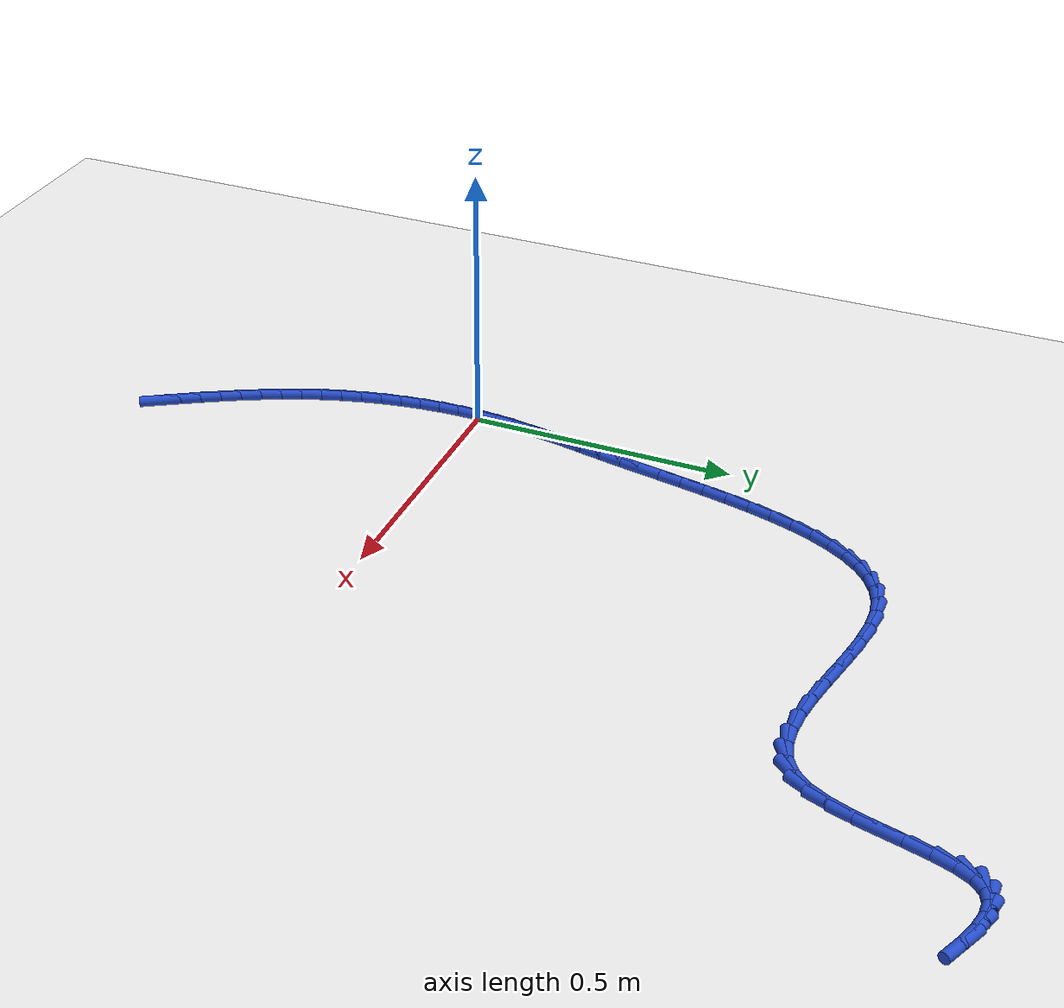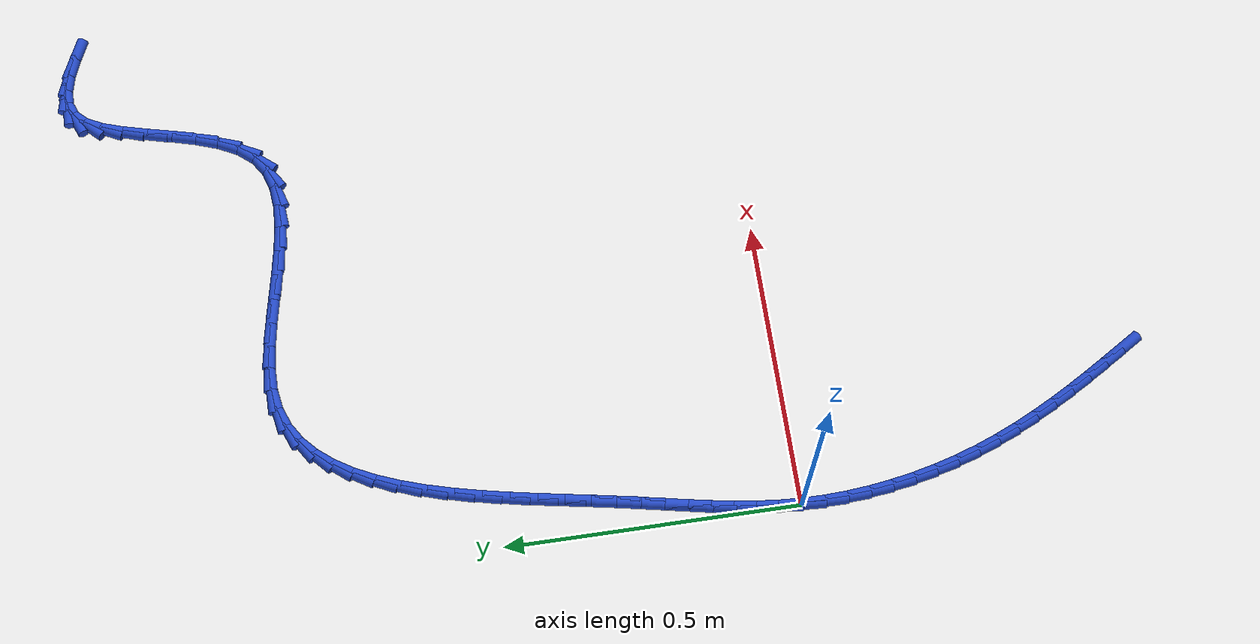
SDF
<sdf version="1.6">
 <world name="default">
  <model name="ground_plane">
   <static>1</static>
   <link name="link">
    <collision name="collision">
     <geometry><plane><normal>0 0 1</normal><size>100 100</size></plane></geometry>
     <surface><friction><ode><mu>100</mu><mu2>50</mu2></ode></friction></surface>
    </collision>
    <visual name="visual">
     <cast_shadows>0</cast_shadows>
     <geometry><plane><normal>0 0 1</normal><size>100 100</size></plane></geometry>
     <material>
      <script><uri>file://media/materials/scripts/gazebo.material</uri><name>Gazebo/WhiteGlow</name></script>
     </material>
    </visual>
   </link>
  </model>
  <model name="line">
   <link name="link_0">
    <pose>3.9898639947466563e-17 -6.938893903907228e-18 0.01 0 1.57 1.513052898574908</pose>
    <collision name="collision">
     <geometry><cylinder><radius>0.01</radius><length>0.08</length></cylinder></geometry>
    </collision>
    <visual name="visual">
     <material>
      <script><name>Gazebo/Blue</name><uri>file://media/materials/scripts/gazebo.material</uri></script>
     </material>
     <geometry><cylinder><radius>0.01</radius><length>0.08</length></cylinder></geometry>
    </visual>
   </link>
   <link name="link_1">
    <pose>0.002156272166381357 0.03730078287012222 0.01 0 1.57 1.4685234188009497</pose>
    <collision name="collision">
     <geometry><cylinder><radius>0.01</radius><length>0.08</length></cylinder></geometry>
    </collision>
    <visual name="visual">
     <material>
      <script><name>Gazebo/Blue</name><uri>file://media/materials/scripts/gazebo.material</uri></script>
     </material>
     <geometry><cylinder><radius>0.01</radius><length>0.08</length></cylinder></geometry>
    </visual>
   </link>
   <link name="link_2">
    <pose>0.0059485236757601465 0.07425113811452021 0.01 0 1.57 1.43174111248327</pose>
    <collision name="collision">
     <geometry><cylinder><radius>0.01</radius><length>0.08</length></cylinder></geometry>
    </collision>
    <visual name="visual">
     <material>
      <script><name>Gazebo/Blue</name><uri>file://media/materials/scripts/gazebo.material</uri></script>
     </material>
     <geometry><cylinder><radius>0.01</radius><length>0.08</length></cylinder></geometry>
    </visual>
   </link>
   <link name="link_3">
    <pose>0.01111453466420199 0.11116216472663602 0.01 0 1.57 1.4035440751428823</pose>
    <collision name="collision">
     <geometry><cylinder><radius>0.01</radius><length>0.08</length></cylinder></geometry>
    </collision>
    <visual name="visual">
     <material>
      <script><name>Gazebo/Blue</name><uri>file://media/materials/scripts/gazebo.material</uri></script>
     </material>
     <geometry><cylinder><radius>0.01</radius><length>0.08</length></cylinder></geometry>
    </visual>
   </link>
   <link name="link_4">
    <pose>0.017392085267772462 0.14834496169991185 0.01 0 1.57 1.3842768778832308</pose>
    <collision name="collision">
     <geometry><cylinder><radius>0.01</radius><length>0.08</length></cylinder></geometry>
    </collision>
    <visual name="visual">
     <material>
      <script><name>Gazebo/Blue</name><uri>file://media/materials/scripts/gazebo.material</uri></script>
     </material>
     <geometry><cylinder><radius>0.01</radius><length>0.08</length></cylinder></geometry>
    </visual>
   </link>
   <link name="link_5">
    <pose>0.024518955622537142 0.18611062802778977 0.01 0 1.57 1.3738474238395277</pose>
    <collision name="collision">
     <geometry><cylinder><radius>0.01</radius><length>0.08</length></cylinder></geometry>
    </collision>
    <visual name="visual">
     <material>
      <script><name>Gazebo/Blue</name><uri>file://media/materials/scripts/gazebo.material</uri></script>
     </material>
     <geometry><cylinder><radius>0.01</radius><length>0.08</length></cylinder></geometry>
    </visual>
   </link>
   <link name="link_6">
    <pose>0.032232925864561605 0.22477026270371198 0.01 0 1.57 1.3718115246575833</pose>
    <collision name="collision">
     <geometry><cylinder><radius>0.01</radius><length>0.08</length></cylinder></geometry>
    </collision>
    <visual name="visual">
     <material>
      <script><name>Gazebo/Blue</name><uri>file://media/materials/scripts/gazebo.material</uri></script>
     </material>
     <geometry><cylinder><radius>0.01</radius><length>0.08</length></cylinder></geometry>
    </visual>
   </link>
   <link name="link_7">
    <pose>0.04027177612991146 0.26463496472112075 0.01 0 1.57 1.3774625699937195</pose>
    <collision name="collision">
     <geometry><cylinder><radius>0.01</radius><length>0.08</length></cylinder></geometry>
    </collision>
    <visual name="visual">
     <material>
      <script><name>Gazebo/Blue</name><uri>file://media/materials/scripts/gazebo.material</uri></script>
     </material>
     <geometry><cylinder><radius>0.01</radius><length>0.08</length></cylinder></geometry>
    </visual>
   </link>
   <link name="link_8">
    <pose>0.048373286554652235 0.3060158330734579 0.01 0 1.57 1.387882711639817</pose>
    <collision name="collision">
     <geometry><cylinder><radius>0.01</radius><length>0.08</length></cylinder></geometry>
    </collision>
    <visual name="visual">
     <material>
      <script><name>Gazebo/Blue</name><uri>file://media/materials/scripts/gazebo.material</uri></script>
     </material>
     <geometry><cylinder><radius>0.01</radius><length>0.08</length></cylinder></geometry>
    </visual>
   </link>
   <link name="link_9">
    <pose>0.05634479398032342 0.3491094351761727 0.01 0 1.57 1.3928162767115702</pose>
    <collision name="collision">
     <geometry><cylinder><radius>0.01</radius><length>0.08</length></cylinder></geometry>
    </collision>
    <visual name="visual">
     <material>
      <script><name>Gazebo/Blue</name><uri>file://media/materials/scripts/gazebo.material</uri></script>
     </material>
     <geometry><cylinder><radius>0.01</radius><length>0.08</length></cylinder></geometry>
    </visual>
   </link>
   <link name="link_10">
    <pose>0.06433805610442077 0.3935452175056501 0.01 0 1.57 1.3898911617452134</pose>
    <collision name="collision">
     <geometry><cylinder><radius>0.01</radius><length>0.08</length></cylinder></geometry>
    </collision>
    <visual name="visual">
     <material>
      <script><name>Gazebo/Blue</name><uri>file://media/materials/scripts/gazebo.material</uri></script>
     </material>
     <geometry><cylinder><radius>0.01</radius><length>0.08</length></cylinder></geometry>
    </visual>
   </link>
   <link name="link_11">
    <pose>0.07261124218220193 0.4387774100218494 0.01 0 1.57 1.3794382811619659</pose>
    <collision name="collision">
     <geometry><cylinder><radius>0.01</radius><length>0.08</length></cylinder></geometry>
    </collision>
    <visual name="visual">
     <material>
      <script><name>Gazebo/Blue</name><uri>file://media/materials/scripts/gazebo.material</uri></script>
     </material>
     <geometry><cylinder><radius>0.01</radius><length>0.08</length></cylinder></geometry>
    </visual>
   </link>
   <link name="link_12">
    <pose>0.08142255242970381 0.4842601917049304 0.01 0 1.57 1.3612991322981687</pose>
    <collision name="collision">
     <geometry><cylinder><radius>0.01</radius><length>0.08</length></cylinder></geometry>
    </collision>
    <visual name="visual">
     <material>
      <script><name>Gazebo/Blue</name><uri>file://media/materials/scripts/gazebo.material</uri></script>
     </material>
     <geometry><cylinder><radius>0.01</radius><length>0.08</length></cylinder></geometry>
    </visual>
   </link>
   <link name="link_13">
    <pose>0.09103018706296327 0.529447741535053 0.01 0 1.57 1.3348462763355675</pose>
    <collision name="collision">
     <geometry><cylinder><radius>0.01</radius><length>0.08</length></cylinder></geometry>
    </collision>
    <visual name="visual">
     <material>
      <script><name>Gazebo/Blue</name><uri>file://media/materials/scripts/gazebo.material</uri></script>
     </material>
     <geometry><cylinder><radius>0.01</radius><length>0.08</length></cylinder></geometry>
    </visual>
   </link>
   <link name="link_14">
    <pose>0.1016923462980172 0.5737942384923768 0.01 0 1.57 1.298949519000918</pose>
    <collision name="collision">
     <geometry><cylinder><radius>0.01</radius><length>0.08</length></cylinder></geometry>
    </collision>
    <visual name="visual">
     <material>
      <script><name>Gazebo/Blue</name><uri>file://media/materials/scripts/gazebo.material</uri></script>
     </material>
     <geometry><cylinder><radius>0.01</radius><length>0.08</length></cylinder></geometry>
    </visual>
   </link>
   <link name="link_15">
    <pose>0.11366723035090241 0.6167538615570614 0.01 0 1.57 1.2518966071197488</pose>
    <collision name="collision">
     <geometry><cylinder><radius>0.01</radius><length>0.08</length></cylinder></geometry>
    </collision>
    <visual name="visual">
     <material>
      <script><name>Gazebo/Blue</name><uri>file://media/materials/scripts/gazebo.material</uri></script>
     </material>
     <geometry><cylinder><radius>0.01</radius><length>0.08</length></cylinder></geometry>
    </visual>
   </link>
   <link name="link_16">
    <pose>0.12721303943765588 0.6577807897092668 0.01 0 1.57 1.1912839573119753</pose>
    <collision name="collision">
     <geometry><cylinder><radius>0.01</radius><length>0.08</length></cylinder></geometry>
    </collision>
    <visual name="visual">
     <material>
      <script><name>Gazebo/Blue</name><uri>file://media/materials/scripts/gazebo.material</uri></script>
     </material>
     <geometry><cylinder><radius>0.01</radius><length>0.08</length></cylinder></geometry>
    </visual>
   </link>
   <link name="link_17">
    <pose>0.1425879737743144 0.6963292019291527 0.01 0 1.57 1.1139224576320705</pose>
    <collision name="collision">
     <geometry><cylinder><radius>0.01</radius><length>0.08</length></cylinder></geometry>
    </collision>
    <visual name="visual">
     <material>
      <script><name>Gazebo/Blue</name><uri>file://media/materials/scripts/gazebo.material</uri></script>
     </material>
     <geometry><cylinder><radius>0.01</radius><length>0.08</length></cylinder></geometry>
    </visual>
   </link>
   <link name="link_18">
    <pose>0.16005023357691486 0.7318532771968789 0.01 0 1.57 1.01588296093077</pose>
    <collision name="collision">
     <geometry><cylinder><radius>0.01</radius><length>0.08</length></cylinder></geometry>
    </collision>
    <visual name="visual">
     <material>
      <script><name>Gazebo/Blue</name><uri>file://media/materials/scripts/gazebo.material</uri></script>
     </material>
     <geometry><cylinder><radius>0.01</radius><length>0.08</length></cylinder></geometry>
    </visual>
   </link>
   <link name="link_19">
    <pose>0.17985801906149418 0.7638071944926049 0.01 0 1.57 0.8929710697329993</pose>
    <collision name="collision">
     <geometry><cylinder><radius>0.01</radius><length>0.08</length></cylinder></geometry>
    </collision>
    <visual name="visual">
     <material>
      <script><name>Gazebo/Blue</name><uri>file://media/materials/scripts/gazebo.material</uri></script>
     </material>
     <geometry><cylinder><radius>0.01</radius><length>0.08</length></cylinder></geometry>
    </visual>
   </link>
   <link name="link_20">
    <pose>0.20226953044408924 0.7916451327964911 0.01 0 1.57 0.7421368837041712</pose>
    <collision name="collision">
     <geometry><cylinder><radius>0.01</radius><length>0.08</length></cylinder></geometry>
    </collision>
    <visual name="visual">
     <material>
      <script><name>Gazebo/Blue</name><uri>file://media/materials/scripts/gazebo.material</uri></script>
     </material>
     <geometry><cylinder><radius>0.01</radius><length>0.08</length></cylinder></geometry>
    </visual>
   </link>
   <link name="link_21">
    <pose>0.22754296794073683 0.8148212710886966 0.01 0 1.57 0.5642155621424705</pose>
    <collision name="collision">
     <geometry><cylinder><radius>0.01</radius><length>0.08</length></cylinder></geometry>
    </collision>
    <visual name="visual">
     <material>
      <script><name>Gazebo/Blue</name><uri>file://media/materials/scripts/gazebo.material</uri></script>
     </material>
     <geometry><cylinder><radius>0.01</radius><length>0.08</length></cylinder></geometry>
    </visual>
   </link>
   <link name="link_22">
    <pose>0.2559365317674739 0.8327897883493813 0.01 0 1.57 0.36703995318017646</pose>
    <collision name="collision">
     <geometry><cylinder><radius>0.01</radius><length>0.08</length></cylinder></geometry>
    </collision>
    <visual name="visual">
     <material>
      <script><name>Gazebo/Blue</name><uri>file://media/materials/scripts/gazebo.material</uri></script>
     </material>
     <geometry><cylinder><radius>0.01</radius><length>0.08</length></cylinder></geometry>
    </visual>
   </link>
   <link name="link_23">
    <pose>0.28770842214033737 0.8450048635587052 0.01 0 1.57 0.16705214579408678</pose>
    <collision name="collision">
     <geometry><cylinder><radius>0.01</radius><length>0.08</length></cylinder></geometry>
    </collision>
    <visual name="visual">
     <material>
      <script><name>Gazebo/Blue</name><uri>file://media/materials/scripts/gazebo.material</uri></script>
     </material>
     <geometry><cylinder><radius>0.01</radius><length>0.08</length></cylinder></geometry>
    </visual>
   </link>
   <link name="link_24">
    <pose>0.323089101907152 0.8509708822966459 0.01 0 1.57 0.0048951480218474295</pose>
    <collision name="collision">
     <geometry><cylinder><radius>0.01</radius><length>0.08</length></cylinder></geometry>
    </collision>
    <visual name="visual">
     <material>
      <script><name>Gazebo/Blue</name><uri>file://media/materials/scripts/gazebo.material</uri></script>
     </material>
     <geometry><cylinder><radius>0.01</radius><length>0.08</length></cylinder></geometry>
    </visual>
   </link>
   <link name="link_25">
    <pose>0.36177423542632364 0.8511602532640685 0.01 0 1.57 -0.1025571734178435</pose>
    <collision name="collision">
     <geometry><cylinder><radius>0.01</radius><length>0.08</length></cylinder></geometry>
    </collision>
    <visual name="visual">
     <material>
      <script><name>Gazebo/Blue</name><uri>file://media/materials/scripts/gazebo.material</uri></script>
     </material>
     <geometry><cylinder><radius>0.01</radius><length>0.08</length></cylinder></geometry>
    </visual>
   </link>
   <link name="link_26">
    <pose>0.40297640505811033 0.8469197977728355 0.01 0 1.57 -0.16831279573436056</pose>
    <collision name="collision">
     <geometry><cylinder><radius>0.01</radius><length>0.08</length></cylinder></geometry>
    </collision>
    <visual name="visual">
     <material>
      <script><name>Gazebo/Blue</name><uri>file://media/materials/scripts/gazebo.material</uri></script>
     </material>
     <geometry><cylinder><radius>0.01</radius><length>0.08</length></cylinder></geometry>
    </visual>
   </link>
   <link name="link_27">
    <pose>0.44589083264267937 0.839627760905016 0.01 0 1.57 -0.2018017960738071</pose>
    <collision name="collision">
     <geometry><cylinder><radius>0.01</radius><length>0.08</length></cylinder></geometry>
    </collision>
    <visual name="visual">
     <material>
      <script><name>Gazebo/Blue</name><uri>file://media/materials/scripts/gazebo.material</uri></script>
     </material>
     <geometry><cylinder><radius>0.01</radius><length>0.08</length></cylinder></geometry>
    </visual>
   </link>
   <link name="link_28">
    <pose>0.4897127400201986 0.8306623877426786 0.01 0 1.57 -0.20778349624121784</pose>
    <collision name="collision">
     <geometry><cylinder><radius>0.01</radius><length>0.08</length></cylinder></geometry>
    </collision>
    <visual name="visual">
     <material>
      <script><name>Gazebo/Blue</name><uri>file://media/materials/scripts/gazebo.material</uri></script>
     </material>
     <geometry><cylinder><radius>0.01</radius><length>0.08</length></cylinder></geometry>
    </visual>
   </link>
   <link name="link_29">
    <pose>0.5336373490308353 0.8214019233678924 0.01 0 1.57 -0.1869809368948122</pose>
    <collision name="collision">
     <geometry><cylinder><radius>0.01</radius><length>0.08</length></cylinder></geometry>
    </collision>
    <visual name="visual">
     <material>
      <script><name>Gazebo/Blue</name><uri>file://media/materials/scripts/gazebo.material</uri></script>
     </material>
     <geometry><cylinder><radius>0.01</radius><length>0.08</length></cylinder></geometry>
    </visual>
   </link>
   <link name="link_30">
    <pose>0.5768598815147576 0.8132246128627261 0.01 0 1.57 -0.13617272997016291</pose>
    <collision name="collision">
     <geometry><cylinder><radius>0.01</radius><length>0.08</length></cylinder></geometry>
    </collision>
    <visual name="visual">
     <material>
      <script><name>Gazebo/Blue</name><uri>file://media/materials/scripts/gazebo.material</uri></script>
     </material>
     <geometry><cylinder><radius>0.01</radius><length>0.08</length></cylinder></geometry>
    </visual>
   </link>
   <link name="link_31">
    <pose>0.6185755593121329 0.8075087013092489 0.01 0 1.57 -0.04758017688392564</pose>
    <collision name="collision">
     <geometry><cylinder><radius>0.01</radius><length>0.08</length></cylinder></geometry>
    </collision>
    <visual name="visual">
     <material>
      <script><name>Gazebo/Blue</name><uri>file://media/materials/scripts/gazebo.material</uri></script>
     </material>
     <geometry><cylinder><radius>0.01</radius><length>0.08</length></cylinder></geometry>
    </visual>
   </link>
   <link name="link_32">
    <pose>0.657979604263129 0.8056324337895296 0.01 0 1.57 0.09182807816345351</pose>
    <collision name="collision">
     <geometry><cylinder><radius>0.01</radius><length>0.08</length></cylinder></geometry>
    </collision>
    <visual name="visual">
     <material>
      <script><name>Gazebo/Blue</name><uri>file://media/materials/scripts/gazebo.material</uri></script>
     </material>
     <geometry><cylinder><radius>0.01</radius><length>0.08</length></cylinder></geometry>
    </visual>
   </link>
   <link name="link_33">
    <pose>0.6942672382079128 0.8089740553856369 0.01 0 1.57 0.29790187421238473</pose>
    <collision name="collision">
     <geometry><cylinder><radius>0.01</radius><length>0.08</length></cylinder></geometry>
    </collision>
    <visual name="visual">
     <material>
      <script><name>Gazebo/Blue</name><uri>file://media/materials/scripts/gazebo.material</uri></script>
     </material>
     <geometry><cylinder><radius>0.01</radius><length>0.08</length></cylinder></geometry>
    </visual>
   </link>
   <link name="link_34">
    <pose>0.7266336829866523 0.8189118111796401 0.01 0 1.57 0.5749961321220008</pose>
    <collision name="collision">
     <geometry><cylinder><radius>0.01</radius><length>0.08</length></cylinder></geometry>
    </collision>
    <visual name="visual">
     <material>
      <script><name>Gazebo/Blue</name><uri>file://media/materials/scripts/gazebo.material</uri></script>
     </material>
     <geometry><cylinder><radius>0.01</radius><length>0.08</length></cylinder></geometry>
    </visual>
   </link>
   <link name="link_35">
    <pose>0.7542741604395155 0.8368239462536078 0.01 0 1.57 0.8809593541204325</pose>
    <collision name="collision">
     <geometry><cylinder><radius>0.01</radius><length>0.08</length></cylinder></geometry>
    </collision>
    <visual name="visual">
     <material>
      <script><name>Gazebo/Blue</name><uri>file://media/materials/scripts/gazebo.material</uri></script>
     </material>
     <geometry><cylinder><radius>0.01</radius><length>0.08</length></cylinder></geometry>
    </visual>
   </link>
   <link name="link_36">
    <pose>0.776532320667093 0.8638015049139302 0.01 0 1.57 1.1048324555072642</pose>
    <collision name="collision">
     <geometry><cylinder><radius>0.01</radius><length>0.08</length></cylinder></geometry>
    </collision>
    <visual name="visual">
     <material>
      <script><name>Gazebo/Blue</name><uri>file://media/materials/scripts/gazebo.material</uri></script>
     </material>
     <geometry><cylinder><radius>0.01</radius><length>0.08</length></cylinder></geometry>
    </visual>
   </link>
   <link name="link_37">
    <pose>0.7939961411705915 0.8985278242444248 0.01 0 1.57 1.2364931587931693</pose>
    <collision name="collision">
     <geometry><cylinder><radius>0.01</radius><length>0.08</length></cylinder></geometry>
    </collision>
    <visual name="visual">
     <material>
      <script><name>Gazebo/Blue</name><uri>file://media/materials/scripts/gazebo.material</uri></script>
     </material>
     <geometry><cylinder><radius>0.01</radius><length>0.08</length></cylinder></geometry>
    </visual>
   </link>
   <link name="link_38">
    <pose>0.8078746848971028 0.9384844740824818 0.01 0 1.57 1.3073294869404763</pose>
    <collision name="collision">
     <geometry><cylinder><radius>0.01</radius><length>0.08</length></cylinder></geometry>
    </collision>
    <visual name="visual">
     <material>
      <script><name>Gazebo/Blue</name><uri>file://media/materials/scripts/gazebo.material</uri></script>
     </material>
     <geometry><cylinder><radius>0.01</radius><length>0.08</length></cylinder></geometry>
    </visual>
   </link>
   <link name="link_39">
    <pose>0.8193815904170296 0.981144170678174 0.01 0 1.57 1.3337421506004719</pose>
    <collision name="collision">
     <geometry><cylinder><radius>0.01</radius><length>0.08</length></cylinder></geometry>
    </collision>
    <visual name="visual">
     <material>
      <script><name>Gazebo/Blue</name><uri>file://media/materials/scripts/gazebo.material</uri></script>
     </material>
     <geometry><cylinder><radius>0.01</radius><length>0.08</length></cylinder></geometry>
    </visual>
   </link>
   <link name="link_40">
    <pose>0.8297304963007744 1.0239796302815742 0.01 0 1.57 1.3192363589302447</pose>
    <collision name="collision">
     <geometry><cylinder><radius>0.01</radius><length>0.08</length></cylinder></geometry>
    </collision>
    <visual name="visual">
     <material>
      <script><name>Gazebo/Blue</name><uri>file://media/materials/scripts/gazebo.material</uri></script>
     </material>
     <geometry><cylinder><radius>0.01</radius><length>0.08</length></cylinder></geometry>
    </visual>
   </link>
   <link name="link_41">
    <pose>0.8401350411187394 1.0644635691427549 0.01 0 1.57 1.2539716437456518</pose>
    <collision name="collision">
     <geometry><cylinder><radius>0.01</radius><length>0.08</length></cylinder></geometry>
    </collision>
    <visual name="visual">
     <material>
      <script><name>Gazebo/Blue</name><uri>file://media/materials/scripts/gazebo.material</uri></script>
     </material>
     <geometry><cylinder><radius>0.01</radius><length>0.08</length></cylinder></geometry>
    </visual>
   </link>
   <link name="link_42">
    <pose>0.8518088634413274 1.1000687035117886 0.01 0 1.57 1.1055268505615456</pose>
    <collision name="collision">
     <geometry><cylinder><radius>0.01</radius><length>0.08</length></cylinder></geometry>
    </collision>
    <visual name="visual">
     <material>
      <script><name>Gazebo/Blue</name><uri>file://media/materials/scripts/gazebo.material</uri></script>
     </material>
     <geometry><cylinder><radius>0.01</radius><length>0.08</length></cylinder></geometry>
    </visual>
   </link>
   <link name="link_43">
    <pose>0.8659656018389409 1.1282677496387492 0.01 0 1.57 0.8045636507098258</pose>
    <collision name="collision">
     <geometry><cylinder><radius>0.01</radius><length>0.08</length></cylinder></geometry>
    </collision>
    <visual name="visual">
     <material>
      <script><name>Gazebo/Blue</name><uri>file://media/materials/scripts/gazebo.material</uri></script>
     </material>
     <geometry><cylinder><radius>0.01</radius><length>0.08</length></cylinder></geometry>
    </visual>
   </link>
   <link name="link_44">
    <pose>0.8837441192683011 1.1467411375816514 0.01 0 1.57 0.38201412358622233</pose>
    <collision name="collision">
     <geometry><cylinder><radius>0.01</radius><length>0.08</length></cylinder></geometry>
    </collision>
    <visual name="visual">
     <material>
      <script><name>Gazebo/Blue</name><uri>file://media/materials/scripts/gazebo.material</uri></script>
     </material>
     <geometry><cylinder><radius>0.01</radius><length>0.08</length></cylinder></geometry>
    </visual>
   </link>
   <link name="link_45">
    <pose>0.9054570846926641 1.155464322367687 0.01 0 1.57 0.014703957135934961</pose>
    <collision name="collision">
     <geometry><cylinder><radius>0.01</radius><length>0.08</length></cylinder></geometry>
    </collision>
    <visual name="visual">
     <material>
      <script><name>Gazebo/Blue</name><uri>file://media/materials/scripts/gazebo.material</uri></script>
     </material>
     <geometry><cylinder><radius>0.01</radius><length>0.08</length></cylinder></geometry>
    </visual>
   </link>
   <link name="link_46">
    <pose>0.9309039030651887 1.1558385182625148 0.01 0 1.57 -0.22241087092429207</pose>
    <collision name="collision">
     <geometry><cylinder><radius>0.01</radius><length>0.08</length></cylinder></geometry>
    </collision>
    <visual name="visual">
     <material>
      <script><name>Gazebo/Blue</name><uri>file://media/materials/scripts/gazebo.material</uri></script>
     </material>
     <geometry><cylinder><radius>0.01</radius><length>0.08</length></cylinder></geometry>
    </visual>
   </link>
   <link name="link_47">
    <pose>0.9598762706227636 1.1492863530211925 0.01 0 1.57 -0.3573388477864341</pose>
    <collision name="collision">
     <geometry><cylinder><radius>0.01</radius><length>0.08</length></cylinder></geometry>
    </collision>
    <visual name="visual">
     <material>
      <script><name>Gazebo/Blue</name><uri>file://media/materials/scripts/gazebo.material</uri></script>
     </material>
     <geometry><cylinder><radius>0.01</radius><length>0.08</length></cylinder></geometry>
    </visual>
   </link>
   <link name="link_48">
    <pose>0.992165883602278 1.1372304543987786 0.01 0 1.57 -0.4277215308155489</pose>
    <collision name="collision">
     <geometry><cylinder><radius>0.01</radius><length>0.08</length></cylinder></geometry>
    </collision>
    <visual name="visual">
     <material>
      <script><name>Gazebo/Blue</name><uri>file://media/materials/scripts/gazebo.material</uri></script>
     </material>
     <geometry><cylinder><radius>0.01</radius><length>0.08</length></cylinder></geometry>
    </visual>
   </link>
   <link name="link_184">
    <pose>0.188132053845033 -0.5831338712171684 0.01 0 1.57 -1.0255816075715283</pose>
    <collision name="collision">
     <geometry><cylinder><radius>0.01</radius><length>0.08</length></cylinder></geometry>
    </collision>
    <visual name="visual">
     <material>
      <script><name>Gazebo/Blue</name><uri>file://media/materials/scripts/gazebo.material</uri></script>
     </material>
     <geometry><cylinder><radius>0.01</radius><length>0.08</length></cylinder></geometry>
    </visual>
   </link>
   <link name="link_185">
    <pose>0.16814620842770137 -0.5501833100384863 0.01 0 1.57 -1.0373243504585896</pose>
    <collision name="collision">
     <geometry><cylinder><radius>0.01</radius><length>0.08</length></cylinder></geometry>
    </collision>
    <visual name="visual">
     <material>
      <script><name>Gazebo/Blue</name><uri>file://media/materials/scripts/gazebo.material</uri></script>
     </material>
     <geometry><cylinder><radius>0.01</radius><length>0.08</length></cylinder></geometry>
    </visual>
   </link>
   <link name="link_186">
    <pose>0.14848720099874005 -0.5168962703246107 0.01 0 1.57 -1.0540922411661127</pose>
    <collision name="collision">
     <geometry><cylinder><radius>0.01</radius><length>0.08</length></cylinder></geometry>
    </collision>
    <visual name="visual">
     <material>
      <script><name>Gazebo/Blue</name><uri>file://media/materials/scripts/gazebo.material</uri></script>
     </material>
     <geometry><cylinder><radius>0.01</radius><length>0.08</length></cylinder></geometry>
    </visual>
   </link>
   <link name="link_187">
    <pose>0.12934478649363473 -0.4832063225585115 0.01 0 1.57 -1.0758885532727143</pose>
    <collision name="collision">
     <geometry><cylinder><radius>0.01</radius><length>0.08</length></cylinder></geometry>
    </collision>
    <visual name="visual">
     <material>
      <script><name>Gazebo/Blue</name><uri>file://media/materials/scripts/gazebo.material</uri></script>
     </material>
     <geometry><cylinder><radius>0.01</radius><length>0.08</length></cylinder></geometry>
    </visual>
   </link>
   <link name="link_188">
    <pose>0.11090871984787119 -0.44904703722315836 0.01 0 1.57 -1.102721334136482</pose>
    <collision name="collision">
     <geometry><cylinder><radius>0.01</radius><length>0.08</length></cylinder></geometry>
    </collision>
    <visual name="visual">
     <material>
      <script><name>Gazebo/Blue</name><uri>file://media/materials/scripts/gazebo.material</uri></script>
     </material>
     <geometry><cylinder><radius>0.01</radius><length>0.08</length></cylinder></geometry>
    </visual>
   </link>
   <link name="link_189">
    <pose>0.09336875599693503 -0.4143519848015208 0.01 0 1.57 -1.1345866905644155</pose>
    <collision name="collision">
     <geometry><cylinder><radius>0.01</radius><length>0.08</length></cylinder></geometry>
    </collision>
    <visual name="visual">
     <material>
      <script><name>Gazebo/Blue</name><uri>file://media/materials/scripts/gazebo.material</uri></script>
     </material>
     <geometry><cylinder><radius>0.01</radius><length>0.08</length></cylinder></geometry>
    </visual>
   </link>
   <link name="link_190">
    <pose>0.07691464987631194 -0.37905473577656834 0.01 0 1.57 -1.1714483453561193</pose>
    <collision name="collision">
     <geometry><cylinder><radius>0.01</radius><length>0.08</length></cylinder></geometry>
    </collision>
    <visual name="visual">
     <material>
      <script><name>Gazebo/Blue</name><uri>file://media/materials/scripts/gazebo.material</uri></script>
     </material>
     <geometry><cylinder><radius>0.01</radius><length>0.08</length></cylinder></geometry>
    </visual>
   </link>
   <link name="link_191">
    <pose>0.061736156421487685 -0.34308886063127075 0.01 0 1.57 -1.2132136174645423</pose>
    <collision name="collision">
     <geometry><cylinder><radius>0.01</radius><length>0.08</length></cylinder></geometry>
    </collision>
    <visual name="visual">
     <material>
      <script><name>Gazebo/Blue</name><uri>file://media/materials/scripts/gazebo.material</uri></script>
     </material>
     <geometry><cylinder><radius>0.01</radius><length>0.08</length></cylinder></geometry>
    </visual>
   </link>
   <link name="link_192">
    <pose>0.04802302117003508 -0.3063879445499279 0.01 0 1.57 -1.2585343353072351</pose>
    <collision name="collision">
     <geometry><cylinder><radius>0.01</radius><length>0.08</length></cylinder></geometry>
    </collision>
    <visual name="visual">
     <material>
      <script><name>Gazebo/Blue</name><uri>file://media/materials/scripts/gazebo.material</uri></script>
     </material>
     <geometry><cylinder><radius>0.01</radius><length>0.08</length></cylinder></geometry>
    </visual>
   </link>
   <link name="link_193">
    <pose>0.035932689226545925 -0.2689361008815411 0.01 0 1.57 -1.303664903356161</pose>
    <collision name="collision">
     <geometry><cylinder><radius>0.01</radius><length>0.08</length></cylinder></geometry>
    </collision>
    <visual name="visual">
     <material>
      <script><name>Gazebo/Blue</name><uri>file://media/materials/scripts/gazebo.material</uri></script>
     </material>
     <geometry><cylinder><radius>0.01</radius><length>0.08</length></cylinder></geometry>
    </visual>
   </link>
   <link name="link_194">
    <pose>0.025518059319177926 -0.23088098680534608 0.01 0 1.57 -1.3482537899956177</pose>
    <collision name="collision">
     <geometry><cylinder><radius>0.01</radius><length>0.08</length></cylinder></geometry>
    </collision>
    <visual name="visual">
     <material>
      <script><name>Gazebo/Blue</name><uri>file://media/materials/scripts/gazebo.material</uri></script>
     </material>
     <geometry><cylinder><radius>0.01</radius><length>0.08</length></cylinder></geometry>
    </visual>
   </link>
   <link name="link_195">
    <pose>0.016810916758046895 -0.19240328761091058 0.01 0 1.57 -1.3927448636982376</pose>
    <collision name="collision">
     <geometry><cylinder><radius>0.01</radius><length>0.08</length></cylinder></geometry>
    </collision>
    <visual name="visual">
     <material>
      <script><name>Gazebo/Blue</name><uri>file://media/materials/scripts/gazebo.material</uri></script>
     </material>
     <geometry><cylinder><radius>0.01</radius><length>0.08</length></cylinder></geometry>
    </visual>
   </link>
   <link name="link_196">
    <pose>0.009843046853268658 -0.15368368858780246 0.01 0 1.57 -1.4375851963730804</pose>
    <collision name="collision">
     <geometry><cylinder><radius>0.01</radius><length>0.08</length></cylinder></geometry>
    </collision>
    <visual name="visual">
     <material>
      <script><name>Gazebo/Blue</name><uri>file://media/materials/scripts/gazebo.material</uri></script>
     </material>
     <geometry><cylinder><radius>0.01</radius><length>0.08</length></cylinder></geometry>
    </visual>
   </link>
   <link name="link_197">
    <pose>0.004646234914959033 -0.11490287502558952 0.01 0 1.57 -1.4832336640118307</pose>
    <collision name="collision">
     <geometry><cylinder><radius>0.01</radius><length>0.08</length></cylinder></geometry>
    </collision>
    <visual name="visual">
     <material>
      <script><name>Gazebo/Blue</name><uri>file://media/materials/scripts/gazebo.material</uri></script>
     </material>
     <geometry><cylinder><radius>0.01</radius><length>0.08</length></cylinder></geometry>
    </visual>
   </link>
   <link name="link_198">
    <pose>0.0012522662532338438 -0.07624153221383959 0.01 0 1.57 -1.5301697923500444</pose>
    <collision name="collision">
     <geometry><cylinder><radius>0.01</radius><length>0.08</length></cylinder></geometry>
    </collision>
    <visual name="visual">
     <material>
      <script><name>Gazebo/Blue</name><uri>file://media/materials/scripts/gazebo.material</uri></script>
     </material>
     <geometry><cylinder><radius>0.01</radius><length>0.08</length></cylinder></geometry>
    </visual>
   </link>
   <link name="link_199">
    <pose>-0.0003070738217910915 -0.037880345442120524 0.01 0 1.57 1.5626900887940172</pose>
    <collision name="collision">
     <geometry><cylinder><radius>0.01</radius><length>0.08</length></cylinder></geometry>
    </collision>
    <visual name="visual">
     <material>
      <script><name>Gazebo/Blue</name><uri>file://media/materials/scripts/gazebo.material</uri></script>
     </material>
     <geometry><cylinder><radius>0.01</radius><length>0.08</length></cylinder></geometry>
    </visual>
   </link>
   <link name="link_200">
    <pose>4.163336342344337e-17 -1.0408340855860843e-16 0.01 0 1.57 1.5116139614692867</pose>
    <collision name="collision">
     <geometry><cylinder><radius>0.01</radius><length>0.08</length></cylinder></geometry>
    </collision>
    <visual name="visual">
     <material>
      <script><name>Gazebo/Blue</name><uri>file://media/materials/scripts/gazebo.material</uri></script>
     </material>
     <geometry><cylinder><radius>0.01</radius><length>0.08</length></cylinder></geometry>
    </visual>
   </link>
   <link name="link_201">
    <pose>0.0022052730287231374 0.03721881882295468 0.01 0 1.57 1.5116139614692865</pose>
    <collision name="collision">
     <geometry><cylinder><radius>0.01</radius><length>0.08</length></cylinder></geometry>
    </collision>
    <visual name="visual">
     <material>
      <script><name>Gazebo/Blue</name><uri>file://media/materials/scripts/gazebo.material</uri></script>
     </material>
     <geometry><cylinder><radius>0.01</radius><length>0.08</length></cylinder></geometry>
    </visual>
   </link>
  </model>
 </world>
</sdf>
